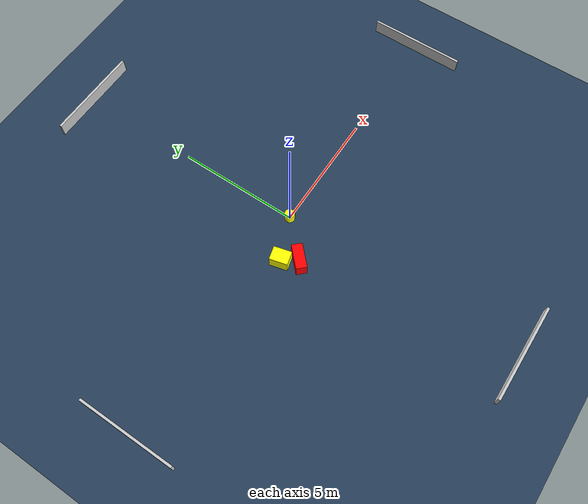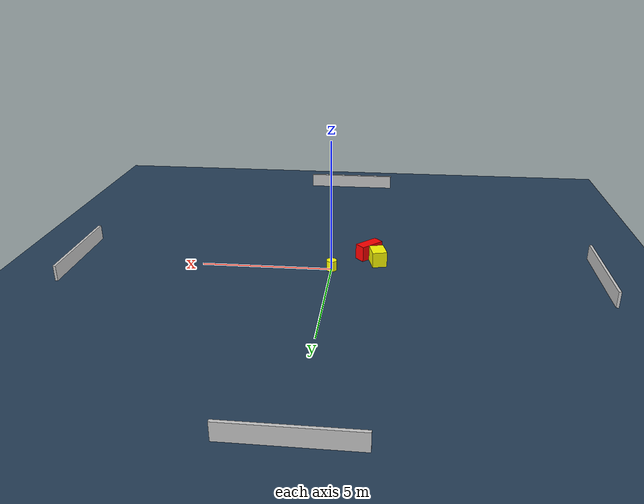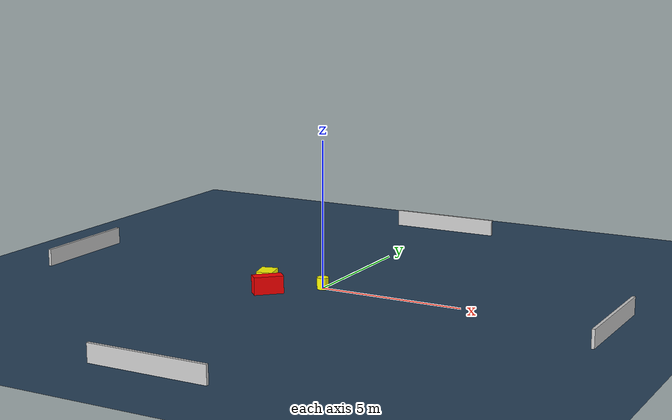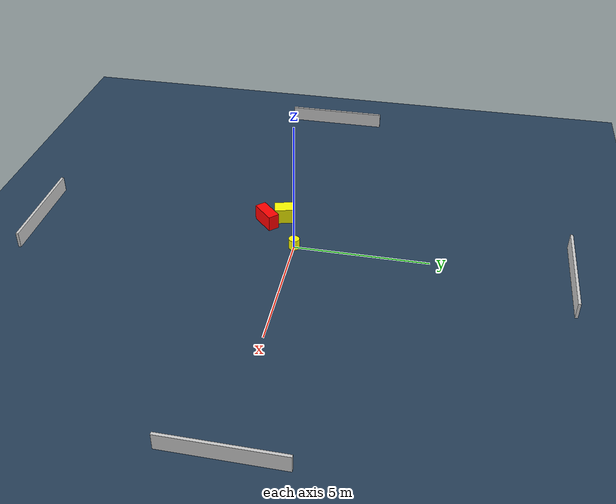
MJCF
<?xml version="1.0" ?>
<mujoco model="generated_environment">
  <option timestep="0.01" integrator="RK4" cone="elliptic"/>
  <default>
    <geom density="1"/>
  </default>
  <asset>
    <texture builtin="gradient" height="3072" name="skybox" rgb1="0.3 0.5 0.7" rgb2="0 0 0" type="skybox" width="512"/>
    <texture builtin="checker" height="300" name="groundplane" rgb1="0.2 0.3 0.4" rgb2="0.1 0.2 0.3" type="2d" width="300"/>
    <material name="groundplane" reflectance="0.2" texrepeat="5 5" texture="groundplane"/>
  </asset>
  <worldbody>
    <light dir="0 0 -1" directional="true" pos="0 0 1.5"/>
    <geom condim="3" friction="0.5 0.005 0.001" material="groundplane" name="floor" pos="0 0 0" size="0 0 0.05" type="plane"/>
    <body name="walls">
      <geom name="wall_1" condim="4" pos="-10.0 0.0 0.3" rgba="0.800000011920929 0.800000011920929 0.800000011920929 1.0" size="0.05 2.0 0.3" type="box"/>
      <geom name="wall_2" condim="4" pos="10.0 0.0 0.3" rgba="0.800000011920929 0.800000011920929 0.800000011920929 1.0" size="0.05 2.0 0.3" type="box"/>
      <geom name="wall_3" condim="4" pos="0.0 -10.0 0.3" rgba="0.800000011920929 0.800000011920929 0.800000011920929 1.0" size="2.0 0.05 0.3" type="box"/>
      <geom name="wall_4" condim="4" pos="0.0 10.0 0.3" rgba="0.800000011920929 0.800000011920929 0.800000011920929 1.0" size="2.0 0.05 0.3" type="box"/>
    </body>
    <body name="robot">
      <joint name="joint_x" type="slide" pos="0 0 0" axis="1 0 0"/>
      <joint name="joint_y" type="slide" pos="0 0 0" axis="0 1 0"/>
      <geom name="robot" type="cylinder" pos="0.0 0.0 0.2" size="0.2 0.2 0.0" mass="5.0" friction="1.0 0.005 0.0001" condim="4" rgba="1.0 1.0 0.0 1.0"/>
    </body>
    <body name="obstacle_1_movable">
      <geom name="obstacle_1_movable" condim="4" pos="-1.728215730605404 -0.7381250462993922 0.3" euler="0 0 14.12615281532557" friction="0.0 0.005 0.001" rgba="1.0 1.0 0.0 1.0" size="0.27885657901684724 0.3673916594342975 0.3" type="box" mass="0.1"/>
      <joint type="free"/>
    </body>
    <body name="obstacle_2_static">
      <geom name="obstacle_2_static" condim="4" pos="-1.3540388234941487 -1.3323136938471216 0.3" euler="0 0 134.16302957019155" friction="0.0 0.005 0.001" rgba="1.0 0.0 0.0 1.0" size="0.21628674302125145 0.5009022079864812 0.3" type="box"/>
    </body>
  </worldbody>
  <actuator>
    <motor name="actuator_x" joint="joint_x" gear="1" ctrlrange="-1 1"/>
    <motor name="actuator_y" joint="joint_y" gear="1" ctrlrange="-1 1"/>
  </actuator>
</mujoco>
